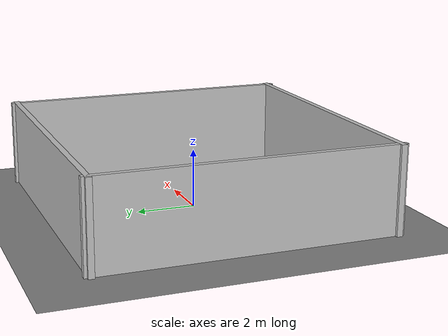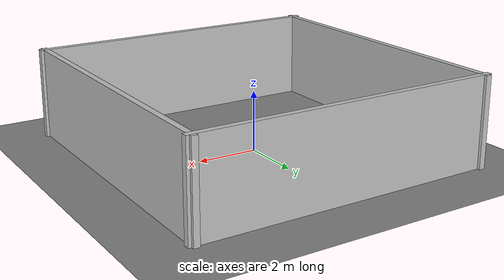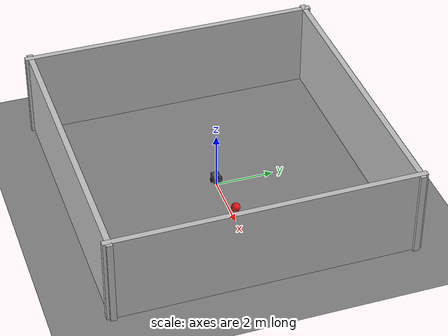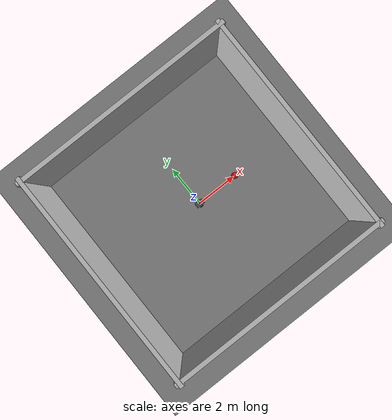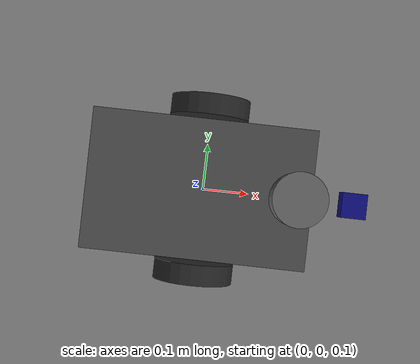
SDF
<?xml version="1.0" ?>
<sdf version="1.11">
  <world name="hazardwalker_world">

    <plugin filename="gz-sim-physics-system" name="gz::sim::systems::Physics"/>
    <plugin filename="gz-sim-user-commands-system" name="gz::sim::systems::UserCommands"/>
    <plugin filename="gz-sim-scene-broadcaster-system" name="gz::sim::systems::SceneBroadcaster"/>
    <plugin filename="gz-sim-sensors-system" name="gz::sim::systems::Sensors">
      <render_engine>ogre2</render_engine>
    </plugin>

    <!-- ================================================================
        物理引擎配置
        ================================================================ -->
    <physics name="1ms" type="ignored">
      <max_step_size>0.001</max_step_size>
      <real_time_factor>1.0</real_time_factor>
    </physics>

    <!-- ================================================================
        图形场景：光照 + 背景
        ================================================================ -->
    <scene>
      <ambient>0.4 0.4 0.4</ambient>
      <background>0.7 0.7 0.7</background>
      <grid>true</grid>
    </scene>

    <!-- 方向光：模拟天花板日光灯 -->
    <light type="directional" name="ceiling_light">
      <cast_shadows>true</cast_shadows>
      <pose>0 0 5 0 0 0</pose>
      <diffuse>0.8 0.8 0.8</diffuse>
      <specular>0.2 0.2 0.2</specular>
      <attenuation>
        <range>1000</range>
        <constant>0.9</constant>
        <linear>0.01</linear>
        <quadratic>0.001</quadratic>
      </attenuation>
      <direction>-0.5 -0.2 -0.9</direction>
    </light>

    <!-- ================================================================
        地板 — 20m × 20m，覆盖整个房间
        ================================================================ -->
    <model name="ground_plane">
      <static>true</static>
      <link name="link">
        <collision name="collision">
          <geometry>
            <plane>
              <normal>0 0 1</normal>
              <size>20 20</size>
            </plane>
          </geometry>
        </collision>
        <visual name="visual">
          <geometry>
            <plane>
              <normal>0 0 1</normal>
              <size>20 20</size>
            </plane>
          </geometry>
          <material>
            <ambient>0.4 0.4 0.4</ambient>
            <diffuse>0.5 0.5 0.5</diffuse>
            <specular>0.05 0.05 0.05</specular>
          </material>
        </visual>
      </link>
    </model>

    <!-- 北墙 (y = +5) -->
    <model name="wall_north">
      <static>true</static>
      <pose>0 5 1.5 0 0 0</pose>
      <link name="link">
        <visual name="visual">
          <geometry>
            <box><size>10.4 0.2 3.0</size></box>
          </geometry>
          <material>
            <ambient>0.7 0.7 0.7</ambient>
            <diffuse>0.75 0.75 0.75</diffuse>
            <specular>0.05 0.05 0.05</specular>
          </material>
        </visual>
        <collision name="collision">
          <geometry>
            <box><size>10.4 0.2 3.0</size></box>
          </geometry>
        </collision>
      </link>
    </model>

    <!-- 南墙 (y = -5) -->
    <model name="wall_south">
      <static>true</static>
      <pose>0 -5 1.5 0 0 0</pose>
      <link name="link">
        <visual name="visual">
          <geometry>
            <box><size>10.4 0.2 3.0</size></box>
          </geometry>
          <material>
            <ambient>0.7 0.7 0.7</ambient>
            <diffuse>0.75 0.75 0.75</diffuse>
            <specular>0.05 0.05 0.05</specular>
          </material>
        </visual>
        <collision name="collision">
          <geometry>
            <box><size>10.4 0.2 3.0</size></box>
          </geometry>
        </collision>
      </link>
    </model>

    <!-- 东墙 (x = +5) -->
    <model name="wall_east">
      <static>true</static>
      <pose>5 0 1.5 0 0 0</pose>
      <link name="link">
        <visual name="visual">
          <geometry>
            <box><size>0.2 10.4 3.0</size></box>
          </geometry>
          <material>
            <ambient>0.7 0.7 0.7</ambient>
            <diffuse>0.75 0.75 0.75</diffuse>
            <specular>0.05 0.05 0.05</specular>
          </material>
        </visual>
        <collision name="collision">
          <geometry>
            <box><size>0.2 10.4 3.0</size></box>
          </geometry>
        </collision>
      </link>
    </model>

    <!-- 西墙 (x = -5) -->
    <model name="wall_west">
      <static>true</static>
      <pose>-5 0 1.5 0 0 0</pose>
      <link name="link">
        <visual name="visual">
          <geometry>
            <box><size>0.2 10.4 3.0</size></box>
          </geometry>
          <material>
            <ambient>0.7 0.7 0.7</ambient>
            <diffuse>0.75 0.75 0.75</diffuse>
            <specular>0.05 0.05 0.05</specular>
          </material>
        </visual>
        <collision name="collision">
          <geometry>
            <box><size>0.2 10.4 3.0</size></box>
          </geometry>
        </collision>
      </link>
    </model>

    <include>
      <uri>model://simple_robot</uri>
      <pose>0 0 0.15 0 0 0</pose>
    </include>

    <include>
      <uri>model://red_ball</uri>
      <pose>2.0 0.0 0.6 0 0 0</pose>
    </include>

  </world>
</sdf>

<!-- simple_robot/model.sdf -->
<sdf version="1.11">
  <model name="simple_robot">

    <!-- ================================================================
        底盘 — 机器人主体
        尺寸：0.4m(长) × 0.25m(宽) × 0.2m(高)
        ================================================================ -->
    <link name="chassis">
      <pose>0 0 0.15 0 0 0</pose>
      <inertial>
        <mass>15.0</mass>
        <inertia>
          <ixx>0.4</ixx>  <ixy>0.0</ixy>  <ixz>0.0</ixz>
          <iyy>0.4</iyy>  <iyz>0.0</iyz>
          <izz>0.5</izz>
        </inertia>
      </inertial>
      <visual name="chassis_visual">
        <geometry>
          <box><size>0.4 0.25 0.2</size></box>
        </geometry>
        <material>
          <ambient>0.2 0.2 0.2</ambient>
          <diffuse>0.3 0.3 0.3</diffuse>
          <specular>0.1 0.1 0.1</specular>
        </material>
      </visual>
      <collision name="chassis_collision">
        <geometry>
          <box><size>0.4 0.25 0.2</size></box>
        </geometry>
      </collision>
    </link>

    <!-- ================================================================
        左驱动轮
        半径 0.08m，宽度 0.04m
        ================================================================ -->
    <link name="left_wheel">
      <pose>0 0.165 0.08 1.5708 0 0</pose>
      <inertial>
        <mass>0.5</mass>
        <inertia>
          <ixx>0.001</ixx>  <ixy>0</ixy>  <ixz>0</ixz>
          <iyy>0.001</iyy>  <iyz>0</iyz>
          <izz>0.001</izz>
        </inertia>
      </inertial>
      <visual name="left_wheel_visual">
        <geometry>
          <cylinder><radius>0.08</radius><length>0.04</length></cylinder>
        </geometry>
        <material>
          <ambient>0.1 0.1 0.1</ambient>
          <diffuse>0.15 0.15 0.15</diffuse>
        </material>
      </visual>
      <collision name="left_wheel_collision">
        <geometry>
          <cylinder><radius>0.08</radius><length>0.04</length></cylinder>
        </geometry>
      </collision>
    </link>

    <joint name="left_wheel_joint" type="revolute">
      <parent>chassis</parent>
      <child>left_wheel</child>
      <axis><xyz>0 1 0</xyz></axis>
      <pose>0 0.165 0 0 0 0</pose>
    </joint>

    <!-- ================================================================
        右驱动轮
        ================================================================ -->
    <link name="right_wheel">
      <pose>0 -0.165 0.08 1.5708 0 0</pose>
      <inertial>
        <mass>0.5</mass>
        <inertia>
          <ixx>0.001</ixx>  <ixy>0</ixy>  <ixz>0</ixz>
          <iyy>0.001</iyy>  <iyz>0</iyz>
          <izz>0.001</izz>
        </inertia>
      </inertial>
      <visual name="right_wheel_visual">
        <geometry>
          <cylinder><radius>0.08</radius><length>0.04</length></cylinder>
        </geometry>
        <material>
          <ambient>0.1 0.1 0.1</ambient>
          <diffuse>0.15 0.15 0.15</diffuse>
        </material>
      </visual>
      <collision name="right_wheel_collision">
        <geometry>
          <cylinder><radius>0.08</radius><length>0.04</length></cylinder>
        </geometry>
      </collision>
    </link>

    <joint name="right_wheel_joint" type="revolute">
      <parent>chassis</parent>
      <child>right_wheel</child>
      <axis><xyz>0 -1 0</xyz></axis>
      <pose>0 -0.165 0 0 0 0</pose>
    </joint>

    <!-- ================================================================
        万向支撑轮（后方），保持平衡
        ================================================================ -->
    <link name="caster_wheel">
      <pose>-0.15 0 0.04 0 0 0</pose>
      <inertial>
        <mass>0.1</mass>
        <inertia>
          <ixx>1e-5</ixx>  <ixy>0</ixy>  <ixz>0</ixz>
          <iyy>1e-5</iyy>  <iyz>0</iyz>
          <izz>1e-5</izz>
        </inertia>
      </inertial>
      <visual name="caster_visual">
        <geometry><sphere><radius>0.03</radius></sphere></geometry>
        <material><ambient>0.1 0.1 0.1</ambient></material>
      </visual>
      <collision name="caster_collision">
        <geometry><sphere><radius>0.03</radius></sphere></geometry>
      </collision>
    </link>

    <joint name="caster_joint" type="ball">
      <parent>chassis</parent>
      <child>caster_wheel</child>
    </joint>

    <link name="camera_link">
      <pose>0.25 0 0.35 0 0 0</pose>
      <inertial>
        <mass>0.1</mass>
        <inertia>
          <ixx>1e-5</ixx>  <ixy>0</ixy>  <ixz>0</ixz>
          <iyy>1e-5</iyy>  <iyz>0</iyz>
          <izz>1e-5</izz>
        </inertia>
      </inertial>
      <visual name="camera_visual">
        <geometry><box><size>0.04 0.04 0.03</size></box></geometry>
        <material>
          <ambient>0.05 0.05 0.3</ambient>
          <diffuse>0.05 0.05 0.5</diffuse>
        </material>
      </visual>

      <sensor name="camera" type="camera">
        <camera>
          <horizontal_fov>1.047</horizontal_fov>
          <image>
            <width>640</width>
            <height>480</height>
          </image>
          <clip>
            <near>0.05</near>
            <far>50.0</far>
          </clip>
        </camera>
        <always_on>1</always_on>
        <update_rate>30.0</update_rate>
        <visualize>false</visualize>
        <topic>/camera/image</topic>
      </sensor>
    </link>

    <joint name="camera_joint" type="fixed">
      <parent>chassis</parent>
      <child>camera_link</child>
    </joint>

    <link name="lidar_link">
      <pose>0.15 0 0.45 0 0 0</pose>
      <inertial>
        <mass>0.3</mass>
        <inertia>
          <ixx>0.001</ixx>  <ixy>0</ixy>  <ixz>0</ixz>
          <iyy>0.001</iyy>  <iyz>0</iyz>
          <izz>0.001</izz>
        </inertia>
      </inertial>
      <visual name="lidar_visual">
        <geometry>
          <cylinder><radius>0.04</radius><length>0.06</length></cylinder>
        </geometry>
        <material>
          <ambient>0.3 0.3 0.3</ambient>
          <diffuse>0.4 0.4 0.4</diffuse>
        </material>
      </visual>

      <sensor name="lidar" type="gpu_lidar">
        <ray>
          <scan>
            <horizontal>
              <samples>360</samples>
              <resolution>1</resolution>
              <min_angle>-3.14159</min_angle>
              <max_angle>3.14159</max_angle>
            </horizontal>
            <vertical>
              <samples>16</samples>
              <resolution>1</resolution>
              <min_angle>-0.2618</min_angle>
              <max_angle>0.2618</max_angle>
            </vertical>
          </scan>
          <range>
            <min>0.1</min>
            <max>20.0</max>
            <resolution>0.01</resolution>
          </range>
          <noise>
            <type>gaussian</type>
            <mean>0.0</mean>
            <stddev>0.02</stddev>
          </noise>
        </ray>
        <always_on>1</always_on>
        <update_rate>10.0</update_rate>
        <visualize>false</visualize>
        <topic>/lidar/points</topic>
      </sensor>
    </link>

    <joint name="lidar_joint" type="fixed">
      <parent>chassis</parent>
      <child>lidar_link</child>
    </joint>

    <!-- ================================================================
        IMU 传感器 — 挂载于底盘中心
        ================================================================ -->
    <link name="imu_link">
      <pose>0 0 0.1 0 0 0</pose>
      <sensor name="imu" type="imu">
        <always_on>1</always_on>
        <update_rate>100.0</update_rate>
        <visualize>false</visualize>
        <topic>/imu</topic>
      </sensor>
    </link>

    <joint name="imu_joint" type="fixed">
      <parent>chassis</parent>
      <child>imu_link</child>
    </joint>

    <plugin
      filename="gz-sim-diff-drive-system"
      name="gz::sim::systems::DiffDrive">
      <left_joint>left_wheel_joint</left_joint>
      <right_joint>right_wheel_joint</right_joint>
      <wheel_separation>0.33</wheel_separation>
      <wheel_radius>0.08</wheel_radius>
      <max_linear_acceleration>2.0</max_linear_acceleration>
      <max_angular_acceleration>4.0</max_angular_acceleration>
      <max_linear_velocity>1.0</max_linear_velocity>
      <max_angular_velocity>3.0</max_angular_velocity>
      <odom_publish_frequency>30.0</odom_publish_frequency>
      <topic>/cmd_vel</topic>
      <odom_topic>/odom</odom_topic>
      <tf_topic>/tf</tf_topic>
      <frame_id>odom</frame_id>
      <child_frame_id>base_link</child_frame_id>
    </plugin>

    <!-- ================================================================
        关节状态发布器
        ================================================================ -->
    <plugin
      filename="gz-sim-joint-state-publisher-system"
      name="gz::sim::systems::JointStatePublisher">
      <joint_name>left_wheel_joint</joint_name>
      <joint_name>right_wheel_joint</joint_name>
      <update_rate>30.0</update_rate>
      <topic>/joint_states</topic>
    </plugin>

  </model>

</sdf>

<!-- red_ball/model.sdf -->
<sdf version="1.11">
  <model name="red_ball">
    <!-- 静态模型，不会移动 -->
    <static>true</static>

    <link name="ball_link">

      <!-- 视觉：纯红色球体，半径 0.15m -->
      <visual name="ball_visual">
        <geometry>
          <sphere><radius>0.15</radius></sphere>
        </geometry>
        <material>
          <ambient>0.9 0.08 0.08</ambient>
          <diffuse>0.9 0.08 0.08</diffuse>
          <specular>0.1 0.1 0.1</specular>
          <emissive>0.0 0.0 0.0</emissive>
        </material>
      </visual>

      <!-- 碰撞：与视觉一致，用于 LiDAR 点云生成 -->
      <collision name="ball_collision">
        <geometry>
          <sphere><radius>0.15</radius></sphere>
        </geometry>
      </collision>
    </link>
  </model>
</sdf>
